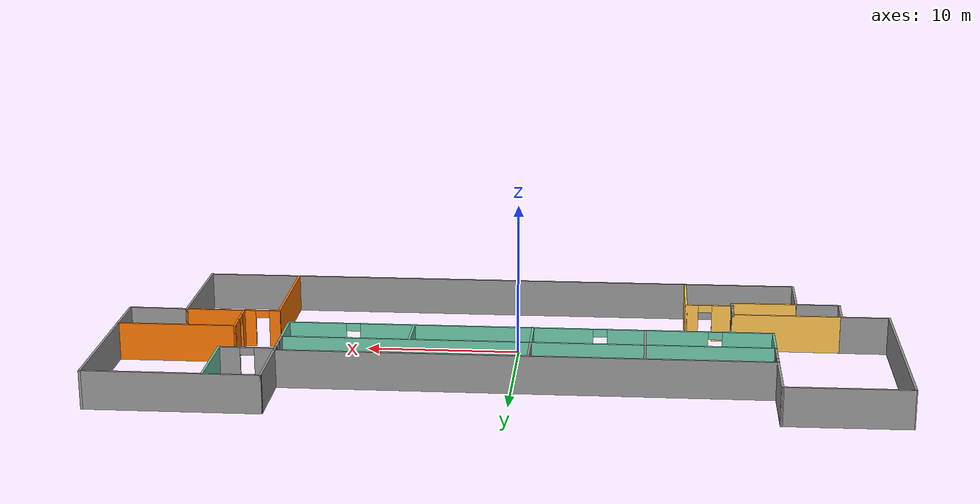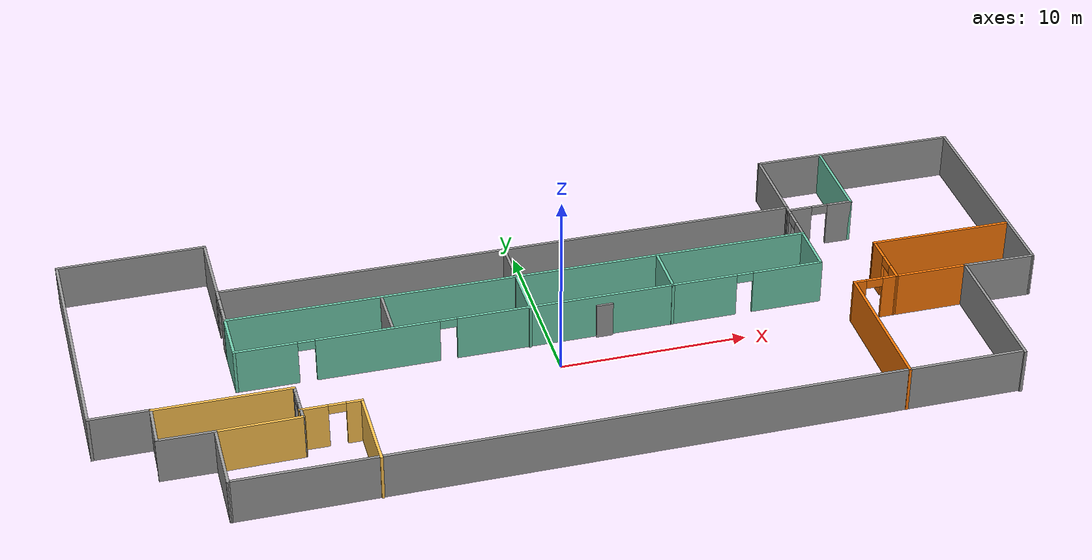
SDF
<?xml version='1.0'?>
<sdf version='1.6'>
  <model name='buildingEditorModel'>
    <pose frame=''>0.7833 2.13347 0 0 -0 0</pose>
    <link name='Door_2'>
      <collision name='Door_2_Collision'>
        <geometry>
          <box>
            <size>0.9 0.17 2</size>
          </box>
        </geometry>
        <pose frame=''>0 0 1 0 -0 0</pose>
      </collision>
      <visual name='Door_2_Visual'>
        <pose frame=''>0 0 1 0 -0 0</pose>
        <geometry>
          <box>
            <size>0.9 0.17 2</size>
          </box>
        </geometry>
        <material>
          <script>
            <uri>file://media/materials/scripts/gazebo.material</uri>
            <name>Gazebo/Grey</name>
          </script>
        </material>
      </visual>
      <pose frame=''>2.1186 -0.056948 0 0 -0 0</pose>
    </link>
    <link name='Wall_12'>
      <collision name='Wall_12_Collision'>
        <geometry>
          <box>
            <size>11.25 0.15 2.5</size>
          </box>
        </geometry>
        <pose frame=''>0 0 1.25 0 -0 0</pose>
      </collision>
      <visual name='Wall_12_Visual'>
        <pose frame=''>0 0 1.25 0 -0 0</pose>
        <geometry>
          <box>
            <size>11.25 0.15 2.5</size>
          </box>
        </geometry>
        <material>
          <script>
            <uri>file://media/materials/scripts/gazebo.material</uri>
            <name>Gazebo/Grey</name>
          </script>
          <ambient>1 1 1 1</ambient>
        </material>
        <meta>
          <layer>0</layer>
        </meta>
      </visual>
      <pose frame=''>19.5996 10.1001 0 0 -0 3.14159</pose>
    </link>
    <link name='Wall_13'>
      <collision name='Wall_13_Collision'>
        <geometry>
          <box>
            <size>4.75 0.15 2.5</size>
          </box>
        </geometry>
        <pose frame=''>0 0 1.25 0 -0 0</pose>
      </collision>
      <visual name='Wall_13_Visual'>
        <pose frame=''>0 0 1.25 0 -0 0</pose>
        <geometry>
          <box>
            <size>4.75 0.15 2.5</size>
          </box>
        </geometry>
        <material>
          <script>
            <uri>file://media/materials/scripts/gazebo.material</uri>
            <name>Gazebo/Grey</name>
          </script>
          <ambient>1 1 1 1</ambient>
        </material>
        <meta>
          <layer>0</layer>
        </meta>
      </visual>
      <pose frame=''>14.0496 7.80012 0 0 -0 -1.5708</pose>
    </link>
    <link name='Wall_14'>
      <collision name='Wall_14_Collision'>
        <geometry>
          <box>
            <size>31.5 0.15 2.5</size>
          </box>
        </geometry>
        <pose frame=''>0 0 1.25 0 -0 0</pose>
      </collision>
      <visual name='Wall_14_Visual'>
        <pose frame=''>0 0 1.25 0 -0 0</pose>
        <geometry>
          <box>
            <size>31.5 0.15 2.5</size>
          </box>
        </geometry>
        <material>
          <script>
            <uri>file://media/materials/scripts/gazebo.material</uri>
            <name>Gazebo/Grey</name>
          </script>
          <ambient>1 1 1 1</ambient>
        </material>
        <meta>
          <layer>0</layer>
        </meta>
      </visual>
      <pose frame=''>-1.62541 5.50012 0 0 -0 3.14159</pose>
    </link>
    <link name='Wall_15'>
      <collision name='Wall_15_Collision'>
        <geometry>
          <box>
            <size>4.5 0.15 2.5</size>
          </box>
        </geometry>
        <pose frame=''>0 0 1.25 0 -0 0</pose>
      </collision>
      <visual name='Wall_15_Visual'>
        <pose frame=''>0 0 1.25 0 -0 0</pose>
        <geometry>
          <box>
            <size>4.5 0.15 2.5</size>
          </box>
        </geometry>
        <material>
          <script>
            <uri>file://media/materials/scripts/gazebo.material</uri>
            <name>Gazebo/Grey</name>
          </script>
          <ambient>1 1 1 1</ambient>
        </material>
        <meta>
          <layer>0</layer>
        </meta>
      </visual>
      <pose frame=''>-17.3004 7.67512 0 0 -0 1.5708</pose>
    </link>
    <link name='Wall_18'>
      <collision name='Wall_18_Collision'>
        <geometry>
          <box>
            <size>8.00016 0.15 2.5</size>
          </box>
        </geometry>
        <pose frame=''>0 0 1.25 0 -0 0</pose>
      </collision>
      <visual name='Wall_18_Visual'>
        <pose frame=''>0 0 1.25 0 -0 0</pose>
        <geometry>
          <box>
            <size>8.00016 0.15 2.5</size>
          </box>
        </geometry>
        <material>
          <script>
            <uri>file://media/materials/scripts/gazebo.material</uri>
            <name>Gazebo/Grey</name>
          </script>
          <ambient>1 1 1 1</ambient>
        </material>
        <meta>
          <layer>0</layer>
        </meta>
      </visual>
      <pose frame=''>-21.2254 9.82512 0 0 -0 0.006369</pose>
    </link>
    <link name='Wall_20'>
      <pose frame=''>-17.3004 4.20012 0 0 -0 -1.5708</pose>
      <visual name='Wall_20_Visual_0'>
        <pose frame=''>-1.00181 0 1.25 0 -0 0</pose>
        <geometry>
          <box>
            <size>0.746388 0.15 2.5</size>
          </box>
        </geometry>
        <material>
          <script>
            <uri>file://media/materials/scripts/gazebo.material</uri>
            <name>Gazebo/Grey</name>
          </script>
          <ambient>1 1 1 1</ambient>
        </material>
        <meta>
          <layer>0</layer>
        </meta>
      </visual>
      <collision name='Wall_20_Collision_0'>
        <geometry>
          <box>
            <size>0.746388 0.15 2.5</size>
          </box>
        </geometry>
        <pose frame=''>-1.00181 0 1.25 0 -0 0</pose>
      </collision>
      <visual name='Wall_20_Visual_1'>
        <pose frame=''>0.823194 0 1.25 0 -0 0</pose>
        <geometry>
          <box>
            <size>1.10361 0.15 2.5</size>
          </box>
        </geometry>
        <material>
          <script>
            <uri>file://media/materials/scripts/gazebo.material</uri>
            <name>Gazebo/Grey</name>
          </script>
          <ambient>1 1 1 1</ambient>
        </material>
        <meta>
          <layer>0</layer>
        </meta>
      </visual>
      <collision name='Wall_20_Collision_1'>
        <geometry>
          <box>
            <size>1.10361 0.15 2.5</size>
          </box>
        </geometry>
        <pose frame=''>0.823194 0 1.25 0 -0 0</pose>
      </collision>
      <visual name='Wall_20_Visual_2'>
        <pose frame=''>-0.178612 0 2.25 0 -0 0</pose>
        <geometry>
          <box>
            <size>0.9 0.15 0.5</size>
          </box>
        </geometry>
        <material>
          <script>
            <uri>file://media/materials/scripts/gazebo.material</uri>
            <name>Gazebo/Grey</name>
          </script>
          <ambient>1 1 1 1</ambient>
        </material>
        <meta>
          <layer>0</layer>
        </meta>
      </visual>
      <collision name='Wall_20_Collision_2'>
        <geometry>
          <box>
            <size>0.9 0.15 0.5</size>
          </box>
        </geometry>
        <pose frame=''>-0.178612 0 2.25 0 -0 0</pose>
      </collision>
    </link>
    <link name='Wall_21'>
      <collision name='Wall_21_Collision'>
        <geometry>
          <box>
            <size>31.5 0.15 2.5</size>
          </box>
        </geometry>
        <pose frame=''>0 0 1.25 0 -0 0</pose>
      </collision>
      <visual name='Wall_21_Visual'>
        <pose frame=''>0 0 1.25 0 -0 0</pose>
        <geometry>
          <box>
            <size>31.5 0.15 2.5</size>
          </box>
        </geometry>
        <material>
          <script>
            <uri>file://media/materials/scripts/gazebo.material</uri>
            <name>Gazebo/Grey</name>
          </script>
          <ambient>0.435294 0.796078 0.67451 1</ambient>
        </material>
        <meta>
          <layer>0</layer>
        </meta>
      </visual>
      <pose frame=''>-1.62541 2.90012 0 0 -0 0</pose>
    </link>
    <link name='Wall_22'>
      <pose frame=''>14.0496 4.20012 0 0 -0 1.5708</pose>
      <visual name='Wall_22_Visual_0'>
        <pose frame=''>-0.810224 0 1.25 0 -0 0</pose>
        <geometry>
          <box>
            <size>1.12955 0.15 2.5</size>
          </box>
        </geometry>
        <material>
          <script>
            <uri>file://media/materials/scripts/gazebo.material</uri>
            <name>Gazebo/Grey</name>
          </script>
          <ambient>1 1 1 1</ambient>
        </material>
        <meta>
          <layer>0</layer>
        </meta>
      </visual>
      <collision name='Wall_22_Collision_0'>
        <geometry>
          <box>
            <size>1.12955 0.15 2.5</size>
          </box>
        </geometry>
        <pose frame=''>-0.810224 0 1.25 0 -0 0</pose>
      </collision>
      <visual name='Wall_22_Visual_1'>
        <pose frame=''>1.01478 0 1.25 0 -0 0</pose>
        <geometry>
          <box>
            <size>0.720448 0.15 2.5</size>
          </box>
        </geometry>
        <material>
          <script>
            <uri>file://media/materials/scripts/gazebo.material</uri>
            <name>Gazebo/Grey</name>
          </script>
          <ambient>1 1 1 1</ambient>
        </material>
        <meta>
          <layer>0</layer>
        </meta>
      </visual>
      <collision name='Wall_22_Collision_1'>
        <geometry>
          <box>
            <size>0.720448 0.15 2.5</size>
          </box>
        </geometry>
        <pose frame=''>1.01478 0 1.25 0 -0 0</pose>
      </collision>
      <visual name='Wall_22_Visual_2'>
        <pose frame=''>0.204552 0 2.25 0 -0 0</pose>
        <geometry>
          <box>
            <size>0.9 0.15 0.5</size>
          </box>
        </geometry>
        <material>
          <script>
            <uri>file://media/materials/scripts/gazebo.material</uri>
            <name>Gazebo/Grey</name>
          </script>
          <ambient>1 1 1 1</ambient>
        </material>
        <meta>
          <layer>0</layer>
        </meta>
      </visual>
      <collision name='Wall_22_Collision_2'>
        <geometry>
          <box>
            <size>0.9 0.15 0.5</size>
          </box>
        </geometry>
        <pose frame=''>0.204552 0 2.25 0 -0 0</pose>
      </collision>
    </link>
    <link name='Wall_24'>
      <collision name='Wall_24_Collision'>
        <geometry>
          <box>
            <size>3 0.15 2.5</size>
          </box>
        </geometry>
        <pose frame=''>0 0 1.25 0 -0 0</pose>
      </collision>
      <visual name='Wall_24_Visual'>
        <pose frame=''>0 0 1.25 0 -0 0</pose>
        <geometry>
          <box>
            <size>3 0.15 2.5</size>
          </box>
        </geometry>
        <material>
          <script>
            <uri>file://media/materials/scripts/gazebo.material</uri>
            <name>Gazebo/Grey</name>
          </script>
          <ambient>0.435294 0.796078 0.67451 1</ambient>
        </material>
        <meta>
          <layer>0</layer>
        </meta>
      </visual>
      <pose frame=''>-17.3004 1.47512 0 0 -0 -1.5708</pose>
    </link>
    <link name='Wall_25'>
      <pose frame=''>-1.62541 0.050122 0 0 -0 0</pose>
      <visual name='Wall_25_Visual_0'>
        <pose frame=''>-14.0877 0 1.25 0 -0 0</pose>
        <geometry>
          <box>
            <size>3.32458 0.15 2.5</size>
          </box>
        </geometry>
        <material>
          <script>
            <uri>file://media/materials/scripts/gazebo.material</uri>
            <name>Gazebo/Grey</name>
          </script>
          <ambient>0.435294 0.796078 0.67451 1</ambient>
        </material>
        <meta>
          <layer>0</layer>
        </meta>
      </visual>
      <collision name='Wall_25_Collision_0'>
        <geometry>
          <box>
            <size>3.32458 0.15 2.5</size>
          </box>
        </geometry>
        <pose frame=''>-14.0877 0 1.25 0 -0 0</pose>
      </collision>
      <visual name='Wall_25_Visual_1'>
        <pose frame=''>-8.27902 0 1.25 0 -0 0</pose>
        <geometry>
          <box>
            <size>6.4928 0.15 2.5</size>
          </box>
        </geometry>
        <material>
          <script>
            <uri>file://media/materials/scripts/gazebo.material</uri>
            <name>Gazebo/Grey</name>
          </script>
          <ambient>0.435294 0.796078 0.67451 1</ambient>
        </material>
        <meta>
          <layer>0</layer>
        </meta>
      </visual>
      <collision name='Wall_25_Collision_1'>
        <geometry>
          <box>
            <size>6.4928 0.15 2.5</size>
          </box>
        </geometry>
        <pose frame=''>-8.27902 0 1.25 0 -0 0</pose>
      </collision>
      <visual name='Wall_25_Visual_2'>
        <pose frame=''>3.43273 0 1.25 0 -0 0</pose>
        <geometry>
          <box>
            <size>15.1307 0.15 2.5</size>
          </box>
        </geometry>
        <material>
          <script>
            <uri>file://media/materials/scripts/gazebo.material</uri>
            <name>Gazebo/Grey</name>
          </script>
          <ambient>0.435294 0.796078 0.67451 1</ambient>
        </material>
        <meta>
          <layer>0</layer>
        </meta>
      </visual>
      <collision name='Wall_25_Collision_2'>
        <geometry>
          <box>
            <size>15.1307 0.15 2.5</size>
          </box>
        </geometry>
        <pose frame=''>3.43273 0 1.25 0 -0 0</pose>
      </collision>
      <visual name='Wall_25_Visual_3'>
        <pose frame=''>13.824 0 1.25 0 -0 0</pose>
        <geometry>
          <box>
            <size>3.85191 0.15 2.5</size>
          </box>
        </geometry>
        <material>
          <script>
            <uri>file://media/materials/scripts/gazebo.material</uri>
            <name>Gazebo/Grey</name>
          </script>
          <ambient>0.435294 0.796078 0.67451 1</ambient>
        </material>
        <meta>
          <layer>0</layer>
        </meta>
      </visual>
      <collision name='Wall_25_Collision_3'>
        <geometry>
          <box>
            <size>3.85191 0.15 2.5</size>
          </box>
        </geometry>
        <pose frame=''>13.824 0 1.25 0 -0 0</pose>
      </collision>
      <visual name='Wall_25_Visual_4'>
        <pose frame=''>-11.9754 0 2.25 0 -0 0</pose>
        <geometry>
          <box>
            <size>0.9 0.15 0.5</size>
          </box>
        </geometry>
        <material>
          <script>
            <uri>file://media/materials/scripts/gazebo.material</uri>
            <name>Gazebo/Grey</name>
          </script>
          <ambient>0.435294 0.796078 0.67451 1</ambient>
        </material>
        <meta>
          <layer>0</layer>
        </meta>
      </visual>
      <collision name='Wall_25_Collision_4'>
        <geometry>
          <box>
            <size>0.9 0.15 0.5</size>
          </box>
        </geometry>
        <pose frame=''>-11.9754 0 2.25 0 -0 0</pose>
      </collision>
      <visual name='Wall_25_Visual_5'>
        <pose frame=''>-4.58262 0 2.25 0 -0 0</pose>
        <geometry>
          <box>
            <size>0.9 0.15 0.5</size>
          </box>
        </geometry>
        <material>
          <script>
            <uri>file://media/materials/scripts/gazebo.material</uri>
            <name>Gazebo/Grey</name>
          </script>
          <ambient>0.435294 0.796078 0.67451 1</ambient>
        </material>
        <meta>
          <layer>0</layer>
        </meta>
      </visual>
      <collision name='Wall_25_Collision_5'>
        <geometry>
          <box>
            <size>0.9 0.15 0.5</size>
          </box>
        </geometry>
        <pose frame=''>-4.58262 0 2.25 0 -0 0</pose>
      </collision>
      <visual name='Wall_25_Visual_6'>
        <pose frame=''>11.4481 0 2.25 0 -0 0</pose>
        <geometry>
          <box>
            <size>0.9 0.15 0.5</size>
          </box>
        </geometry>
        <material>
          <script>
            <uri>file://media/materials/scripts/gazebo.material</uri>
            <name>Gazebo/Grey</name>
          </script>
          <ambient>0.435294 0.796078 0.67451 1</ambient>
        </material>
        <meta>
          <layer>0</layer>
        </meta>
      </visual>
      <collision name='Wall_25_Collision_6'>
        <geometry>
          <box>
            <size>0.9 0.15 0.5</size>
          </box>
        </geometry>
        <pose frame=''>11.4481 0 2.25 0 -0 0</pose>
      </collision>
    </link>
    <link name='Wall_26'>
      <collision name='Wall_26_Collision'>
        <geometry>
          <box>
            <size>3 0.15 2.5</size>
          </box>
        </geometry>
        <pose frame=''>0 0 1.25 0 -0 0</pose>
      </collision>
      <visual name='Wall_26_Visual'>
        <pose frame=''>0 0 1.25 0 -0 0</pose>
        <geometry>
          <box>
            <size>3 0.15 2.5</size>
          </box>
        </geometry>
        <material>
          <script>
            <uri>file://media/materials/scripts/gazebo.material</uri>
            <name>Gazebo/Grey</name>
          </script>
          <ambient>0.435294 0.796078 0.67451 1</ambient>
        </material>
        <meta>
          <layer>0</layer>
        </meta>
      </visual>
      <pose frame=''>14.0496 1.47512 0 0 -0 1.5708</pose>
    </link>
    <link name='Wall_28'>
      <collision name='Wall_28_Collision'>
        <geometry>
          <box>
            <size>2.75 0.15 2.5</size>
          </box>
        </geometry>
        <pose frame=''>0 0 1.25 0 -0 0</pose>
      </collision>
      <visual name='Wall_28_Visual'>
        <pose frame=''>0 0 1.25 0 -0 0</pose>
        <geometry>
          <box>
            <size>2.75 0.15 2.5</size>
          </box>
        </geometry>
        <material>
          <script>
            <uri>file://media/materials/scripts/gazebo.material</uri>
            <name>Gazebo/Grey</name>
          </script>
          <ambient>1 1 1 1</ambient>
        </material>
        <meta>
          <layer>0</layer>
        </meta>
      </visual>
      <pose frame=''>-1.8761 4.11632 0 0 -0 -1.5708</pose>
    </link>
    <link name='Wall_30'>
      <collision name='Wall_30_Collision'>
        <geometry>
          <box>
            <size>3 0.15 2.5</size>
          </box>
        </geometry>
        <pose frame=''>0 0 1.25 0 -0 0</pose>
      </collision>
      <visual name='Wall_30_Visual'>
        <pose frame=''>0 0 1.25 0 -0 0</pose>
        <geometry>
          <box>
            <size>3 0.15 2.5</size>
          </box>
        </geometry>
        <material>
          <script>
            <uri>file://media/materials/scripts/gazebo.material</uri>
            <name>Gazebo/Grey</name>
          </script>
          <ambient>1 1 1 1</ambient>
        </material>
        <meta>
          <layer>0</layer>
        </meta>
      </visual>
      <pose frame=''>-9.11327 1.47517 0 0 -0 -1.5708</pose>
    </link>
    <link name='Wall_34'>
      <collision name='Wall_34_Collision'>
        <geometry>
          <box>
            <size>3 0.15 2.5</size>
          </box>
        </geometry>
        <pose frame=''>0 0 1.25 0 -0 0</pose>
      </collision>
      <visual name='Wall_34_Visual'>
        <pose frame=''>0 0 1.25 0 -0 0</pose>
        <geometry>
          <box>
            <size>3 0.15 2.5</size>
          </box>
        </geometry>
        <material>
          <script>
            <uri>file://media/materials/scripts/gazebo.material</uri>
            <name>Gazebo/Grey</name>
          </script>
          <ambient>0.435294 0.796078 0.67451 1</ambient>
        </material>
        <meta>
          <layer>0</layer>
        </meta>
      </visual>
      <pose frame=''>-1.8761 1.39132 0 0 -0 -1.5708</pose>
    </link>
    <link name='Wall_36'>
      <collision name='Wall_36_Collision'>
        <geometry>
          <box>
            <size>3 0.15 2.5</size>
          </box>
        </geometry>
        <pose frame=''>0 0 1.25 0 -0 0</pose>
      </collision>
      <visual name='Wall_36_Visual'>
        <pose frame=''>0 0 1.25 0 -0 0</pose>
        <geometry>
          <box>
            <size>3 0.15 2.5</size>
          </box>
        </geometry>
        <material>
          <script>
            <uri>file://media/materials/scripts/gazebo.material</uri>
            <name>Gazebo/Grey</name>
          </script>
          <ambient>0.435294 0.796078 0.67451 1</ambient>
        </material>
        <meta>
          <layer>0</layer>
        </meta>
      </visual>
      <pose frame=''>5.85391 1.44923 0 0 -0 -1.5708</pose>
    </link>
    <link name='Wall_38'>
      <collision name='Wall_38_Collision'>
        <geometry>
          <box>
            <size>12.5 0.15 2.5</size>
          </box>
        </geometry>
        <pose frame=''>0 0 1.25 0 -0 0</pose>
      </collision>
      <visual name='Wall_38_Visual'>
        <pose frame=''>0 0 1.25 0 -0 0</pose>
        <geometry>
          <box>
            <size>12.5 0.15 2.5</size>
          </box>
        </geometry>
        <material>
          <script>
            <uri>file://media/materials/scripts/gazebo.material</uri>
            <name>Gazebo/Grey</name>
          </script>
          <ambient>1 1 1 1</ambient>
        </material>
        <meta>
          <layer>0</layer>
        </meta>
      </visual>
      <pose frame=''>25.1496 3.92512 0 0 -0 -1.5708</pose>
    </link>
    <link name='Wall_39'>
      <collision name='Wall_39_Collision'>
        <geometry>
          <box>
            <size>3.97441 0.15 2.5</size>
          </box>
        </geometry>
        <pose frame=''>0 0 1.25 0 -0 0</pose>
      </collision>
      <visual name='Wall_39_Visual'>
        <pose frame=''>0 0 1.25 0 -0 0</pose>
        <geometry>
          <box>
            <size>3.97441 0.15 2.5</size>
          </box>
        </geometry>
        <material>
          <script>
            <uri>file://media/materials/scripts/gazebo.material</uri>
            <name>Gazebo/Grey</name>
          </script>
          <ambient>1 1 1 1</ambient>
        </material>
        <meta>
          <layer>0</layer>
        </meta>
      </visual>
      <pose frame=''>23.2376 -2.21097 0 0 -0 3.12125</pose>
    </link>
    <link name='Wall_40'>
      <collision name='Wall_40_Collision'>
        <geometry>
          <box>
            <size>8.07786 0.15 2.5</size>
          </box>
        </geometry>
        <pose frame=''>0 0 1.25 0 -0 0</pose>
      </collision>
      <visual name='Wall_40_Visual'>
        <pose frame=''>0 0 1.25 0 -0 0</pose>
        <geometry>
          <box>
            <size>8.07786 0.15 2.5</size>
          </box>
        </geometry>
        <material>
          <script>
            <uri>file://media/materials/scripts/gazebo.material</uri>
            <name>Gazebo/Grey</name>
          </script>
          <ambient>1 1 1 1</ambient>
        </material>
        <meta>
          <layer>0</layer>
        </meta>
      </visual>
      <pose frame=''>21.3126 -6.13597 0 0 -0 -1.57407</pose>
    </link>
    <link name='Wall_42'>
      <collision name='Wall_42_Collision'>
        <geometry>
          <box>
            <size>40.5 0.15 2.5</size>
          </box>
        </geometry>
        <pose frame=''>0 0 1.25 0 -0 0</pose>
      </collision>
      <visual name='Wall_42_Visual'>
        <pose frame=''>0 0 1.25 0 -0 0</pose>
        <geometry>
          <box>
            <size>40.5 0.15 2.5</size>
          </box>
        </geometry>
        <material>
          <script>
            <uri>file://media/materials/scripts/gazebo.material</uri>
            <name>Gazebo/Grey</name>
          </script>
          <ambient>1 1 1 1</ambient>
        </material>
        <meta>
          <layer>0</layer>
        </meta>
      </visual>
      <pose frame=''>0.974593 -9.99988 0 0 -0 0</pose>
    </link>
    <link name='Wall_45'>
      <collision name='Wall_45_Collision'>
        <geometry>
          <box>
            <size>7.25 0.15 2.5</size>
          </box>
        </geometry>
        <pose frame=''>0 0 1.25 0 -0 0</pose>
      </collision>
      <visual name='Wall_45_Visual'>
        <pose frame=''>0 0 1.25 0 -0 0</pose>
        <geometry>
          <box>
            <size>7.25 0.15 2.5</size>
          </box>
        </geometry>
        <material>
          <script>
            <uri>file://media/materials/scripts/gazebo.material</uri>
            <name>Gazebo/Grey</name>
          </script>
          <ambient>1 0.764706 0.305882 1</ambient>
        </material>
        <meta>
          <layer>0</layer>
        </meta>
      </visual>
      <pose frame=''>-18.4226 -3.61565 0 0 -0 0</pose>
    </link>
    <link name='Wall_46'>
      <pose frame=''>-14.8726 -4.81659 0 0 -0 -1.5708</pose>
      <visual name='Wall_46_Visual_0'>
        <pose frame=''>-1.06386 0 1.25 0 -0 0</pose>
        <geometry>
          <box>
            <size>0.424155 0.15 2.5</size>
          </box>
        </geometry>
        <material>
          <script>
            <uri>file://media/materials/scripts/gazebo.material</uri>
            <name>Gazebo/Grey</name>
          </script>
          <ambient>1 1 1 1</ambient>
        </material>
        <meta>
          <layer>0</layer>
        </meta>
      </visual>
      <collision name='Wall_46_Collision_0'>
        <geometry>
          <box>
            <size>0.424155 0.15 2.5</size>
          </box>
        </geometry>
        <pose frame=''>-1.06386 0 1.25 0 -0 0</pose>
      </collision>
      <visual name='Wall_46_Visual_1'>
        <pose frame=''>0.662078 0 1.25 0 -0 0</pose>
        <geometry>
          <box>
            <size>1.22772 0.15 2.5</size>
          </box>
        </geometry>
        <material>
          <script>
            <uri>file://media/materials/scripts/gazebo.material</uri>
            <name>Gazebo/Grey</name>
          </script>
          <ambient>1 1 1 1</ambient>
        </material>
        <meta>
          <layer>0</layer>
        </meta>
      </visual>
      <collision name='Wall_46_Collision_1'>
        <geometry>
          <box>
            <size>1.22772 0.15 2.5</size>
          </box>
        </geometry>
        <pose frame=''>0.662078 0 1.25 0 -0 0</pose>
      </collision>
      <visual name='Wall_46_Visual_2'>
        <pose frame=''>-0.401784 0 2.25 0 -0 0</pose>
        <geometry>
          <box>
            <size>0.9 0.15 0.5</size>
          </box>
        </geometry>
        <material>
          <script>
            <uri>file://media/materials/scripts/gazebo.material</uri>
            <name>Gazebo/Grey</name>
          </script>
          <ambient>1 1 1 1</ambient>
        </material>
        <meta>
          <layer>0</layer>
        </meta>
      </visual>
      <collision name='Wall_46_Collision_2'>
        <geometry>
          <box>
            <size>0.9 0.15 0.5</size>
          </box>
        </geometry>
        <pose frame=''>-0.401784 0 2.25 0 -0 0</pose>
      </collision>
    </link>
    <link name='Wall_47'>
      <collision name='Wall_47_Collision'>
        <geometry>
          <box>
            <size>4.45217 0.15 2.5</size>
          </box>
        </geometry>
        <pose frame=''>0 0 1.25 0 -0 0</pose>
      </collision>
      <visual name='Wall_47_Visual'>
        <pose frame=''>0 0 1.25 0 -0 0</pose>
        <geometry>
          <box>
            <size>4.45217 0.15 2.5</size>
          </box>
        </geometry>
        <material>
          <script>
            <uri>file://media/materials/scripts/gazebo.material</uri>
            <name>Gazebo/Grey</name>
          </script>
          <ambient>1 0.764706 0.305882 1</ambient>
        </material>
        <meta>
          <layer>0</layer>
        </meta>
      </visual>
      <pose frame=''>-16.9976 -6.04235 0 0 -0 -3.13006</pose>
    </link>
    <link name='Wall_5'>
      <collision name='Wall_5_Collision'>
        <geometry>
          <box>
            <size>13.566 0.15 2.5</size>
          </box>
        </geometry>
        <pose frame=''>0 0 1.25 0 -0 0</pose>
      </collision>
      <visual name='Wall_5_Visual'>
        <pose frame=''>0 0 1.25 0 -0 0</pose>
        <geometry>
          <box>
            <size>13.566 0.15 2.5</size>
          </box>
        </geometry>
        <material>
          <script>
            <uri>file://media/materials/scripts/gazebo.material</uri>
            <name>Gazebo/Grey</name>
          </script>
          <ambient>1 1 1 1</ambient>
        </material>
        <meta>
          <layer>0</layer>
        </meta>
      </visual>
      <pose frame=''>-25.1115 3.09223 0 0 -0 -1.565</pose>
    </link>
    <link name='Wall_51'>
      <pose frame=''>-13.3738 -5.4524 0 0 -0 0</pose>
      <visual name='Wall_51_Visual_0'>
        <pose frame=''>-0.891642 0 1.25 0 -0 0</pose>
        <geometry>
          <box>
            <size>1.46672 0.15 2.5</size>
          </box>
        </geometry>
        <material>
          <script>
            <uri>file://media/materials/scripts/gazebo.material</uri>
            <name>Gazebo/Grey</name>
          </script>
          <ambient>1 0.764706 0.305882 1</ambient>
        </material>
        <meta>
          <layer>0</layer>
        </meta>
      </visual>
      <collision name='Wall_51_Collision_0'>
        <geometry>
          <box>
            <size>1.46672 0.15 2.5</size>
          </box>
        </geometry>
        <pose frame=''>-0.891642 0 1.25 0 -0 0</pose>
      </collision>
      <visual name='Wall_51_Visual_1'>
        <pose frame=''>1.18336 0 1.25 0 -0 0</pose>
        <geometry>
          <box>
            <size>0.883284 0.15 2.5</size>
          </box>
        </geometry>
        <material>
          <script>
            <uri>file://media/materials/scripts/gazebo.material</uri>
            <name>Gazebo/Grey</name>
          </script>
          <ambient>1 0.764706 0.305882 1</ambient>
        </material>
        <meta>
          <layer>0</layer>
        </meta>
      </visual>
      <collision name='Wall_51_Collision_1'>
        <geometry>
          <box>
            <size>0.883284 0.15 2.5</size>
          </box>
        </geometry>
        <pose frame=''>1.18336 0 1.25 0 -0 0</pose>
      </collision>
      <visual name='Wall_51_Visual_2'>
        <pose frame=''>0.291716 0 2.25 0 -0 0</pose>
        <geometry>
          <box>
            <size>0.9 0.15 0.5</size>
          </box>
        </geometry>
        <material>
          <script>
            <uri>file://media/materials/scripts/gazebo.material</uri>
            <name>Gazebo/Grey</name>
          </script>
          <ambient>1 0.764706 0.305882 1</ambient>
        </material>
        <meta>
          <layer>0</layer>
        </meta>
      </visual>
      <collision name='Wall_51_Collision_2'>
        <geometry>
          <box>
            <size>0.9 0.15 0.5</size>
          </box>
        </geometry>
        <pose frame=''>0.291716 0 2.25 0 -0 0</pose>
      </collision>
    </link>
    <link name='Wall_52'>
      <collision name='Wall_52_Collision'>
        <geometry>
          <box>
            <size>4.75 0.15 2.5</size>
          </box>
        </geometry>
        <pose frame=''>0 0 1.25 0 -0 0</pose>
      </collision>
      <visual name='Wall_52_Visual'>
        <pose frame=''>0 0 1.25 0 -0 0</pose>
        <geometry>
          <box>
            <size>4.75 0.15 2.5</size>
          </box>
        </geometry>
        <material>
          <script>
            <uri>file://media/materials/scripts/gazebo.material</uri>
            <name>Gazebo/Grey</name>
          </script>
          <ambient>1 0.764706 0.305882 1</ambient>
        </material>
        <meta>
          <layer>0</layer>
        </meta>
      </visual>
      <pose frame=''>-11.8238 -7.7524 0 0 -0 -1.5708</pose>
    </link>
    <link name='Wall_54'>
      <collision name='Wall_54_Collision'>
        <geometry>
          <box>
            <size>7.75 0.15 2.5</size>
          </box>
        </geometry>
        <pose frame=''>0 0 1.25 0 -0 0</pose>
      </collision>
      <visual name='Wall_54_Visual'>
        <pose frame=''>0 0 1.25 0 -0 0</pose>
        <geometry>
          <box>
            <size>7.75 0.15 2.5</size>
          </box>
        </geometry>
        <material>
          <script>
            <uri>file://media/materials/scripts/gazebo.material</uri>
            <name>Gazebo/Grey</name>
          </script>
          <ambient>0.996078 0.47451 0.0196078 1</ambient>
        </material>
        <meta>
          <layer>0</layer>
        </meta>
      </visual>
      <pose frame=''>21.2493 1.03252 0 0 -0 3.14159</pose>
    </link>
    <link name='Wall_58'>
      <collision name='Wall_58_Collision'>
        <geometry>
          <box>
            <size>4 0.15 2.5</size>
          </box>
        </geometry>
        <pose frame=''>0 0 1.25 0 -0 0</pose>
      </collision>
      <visual name='Wall_58_Visual'>
        <pose frame=''>0 0 1.25 0 -0 0</pose>
        <geometry>
          <box>
            <size>4 0.15 2.5</size>
          </box>
        </geometry>
        <material>
          <script>
            <uri>file://media/materials/scripts/gazebo.material</uri>
            <name>Gazebo/Grey</name>
          </script>
          <ambient>0.996078 0.47451 0.0196078 1</ambient>
        </material>
        <meta>
          <layer>0</layer>
        </meta>
      </visual>
      <pose frame=''>19.4005 -2.17206 0 0 -0 3.14159</pose>
    </link>
    <link name='Wall_59'>
      <pose frame=''>17.4624 -0.569771 0 0 -0 1.57899</pose>
      <visual name='Wall_59_Visual_0'>
        <pose frame=''>-1.17025 0 1.25 0 -0 0</pose>
        <geometry>
          <box>
            <size>1.01419 0.15 2.5</size>
          </box>
        </geometry>
        <material>
          <script>
            <uri>file://media/materials/scripts/gazebo.material</uri>
            <name>Gazebo/Grey</name>
          </script>
          <ambient>0.996078 0.47451 0.0196078 1</ambient>
        </material>
        <meta>
          <layer>0</layer>
        </meta>
      </visual>
      <collision name='Wall_59_Collision_0'>
        <geometry>
          <box>
            <size>1.01419 0.15 2.5</size>
          </box>
        </geometry>
        <pose frame=''>-1.17025 0 1.25 0 -0 0</pose>
      </collision>
      <visual name='Wall_59_Visual_1'>
        <pose frame=''>0.957093 0 1.25 0 -0 0</pose>
        <geometry>
          <box>
            <size>1.4405 0.15 2.5</size>
          </box>
        </geometry>
        <material>
          <script>
            <uri>file://media/materials/scripts/gazebo.material</uri>
            <name>Gazebo/Grey</name>
          </script>
          <ambient>0.996078 0.47451 0.0196078 1</ambient>
        </material>
        <meta>
          <layer>0</layer>
        </meta>
      </visual>
      <collision name='Wall_59_Collision_1'>
        <geometry>
          <box>
            <size>1.4405 0.15 2.5</size>
          </box>
        </geometry>
        <pose frame=''>0.957093 0 1.25 0 -0 0</pose>
      </collision>
      <visual name='Wall_59_Visual_2'>
        <pose frame=''>-0.213157 0 2.25 0 -0 0</pose>
        <geometry>
          <box>
            <size>0.9 0.15 0.5</size>
          </box>
        </geometry>
        <material>
          <script>
            <uri>file://media/materials/scripts/gazebo.material</uri>
            <name>Gazebo/Grey</name>
          </script>
          <ambient>0.996078 0.47451 0.0196078 1</ambient>
        </material>
        <meta>
          <layer>0</layer>
        </meta>
      </visual>
      <collision name='Wall_59_Collision_2'>
        <geometry>
          <box>
            <size>0.9 0.15 0.5</size>
          </box>
        </geometry>
        <pose frame=''>-0.213157 0 2.25 0 -0 0</pose>
      </collision>
    </link>
    <link name='Wall_6'>
      <collision name='Wall_6_Collision'>
        <geometry>
          <box>
            <size>3.25 0.15 2.5</size>
          </box>
        </geometry>
        <pose frame=''>0 0 1.25 0 -0 0</pose>
      </collision>
      <visual name='Wall_6_Visual'>
        <pose frame=''>0 0 1.25 0 -0 0</pose>
        <geometry>
          <box>
            <size>3.25 0.15 2.5</size>
          </box>
        </geometry>
        <material>
          <script>
            <uri>file://media/materials/scripts/gazebo.material</uri>
            <name>Gazebo/Grey</name>
          </script>
          <ambient>1 1 1 1</ambient>
        </material>
        <meta>
          <layer>0</layer>
        </meta>
      </visual>
      <pose frame=''>-23.5226 -3.58971 0 0 -0 0</pose>
    </link>
    <link name='Wall_62'>
      <pose frame=''>16.3005 -2.17206 0 0 -0 3.14159</pose>
      <visual name='Wall_62_Visual_0'>
        <pose frame=''>-0.814621 0 1.25 0 -0 0</pose>
        <geometry>
          <box>
            <size>0.870759 0.15 2.5</size>
          </box>
        </geometry>
        <material>
          <script>
            <uri>file://media/materials/scripts/gazebo.material</uri>
            <name>Gazebo/Grey</name>
          </script>
          <ambient>0.996078 0.47451 0.0196078 1</ambient>
        </material>
        <meta>
          <layer>0</layer>
        </meta>
      </visual>
      <collision name='Wall_62_Collision_0'>
        <geometry>
          <box>
            <size>0.870759 0.15 2.5</size>
          </box>
        </geometry>
        <pose frame=''>-0.814621 0 1.25 0 -0 0</pose>
      </collision>
      <visual name='Wall_62_Visual_1'>
        <pose frame=''>0.885379 0 1.25 0 -0 0</pose>
        <geometry>
          <box>
            <size>0.729241 0.15 2.5</size>
          </box>
        </geometry>
        <material>
          <script>
            <uri>file://media/materials/scripts/gazebo.material</uri>
            <name>Gazebo/Grey</name>
          </script>
          <ambient>0.996078 0.47451 0.0196078 1</ambient>
        </material>
        <meta>
          <layer>0</layer>
        </meta>
      </visual>
      <collision name='Wall_62_Collision_1'>
        <geometry>
          <box>
            <size>0.729241 0.15 2.5</size>
          </box>
        </geometry>
        <pose frame=''>0.885379 0 1.25 0 -0 0</pose>
      </collision>
      <visual name='Wall_62_Visual_2'>
        <pose frame=''>0.070759 0 2.25 0 -0 0</pose>
        <geometry>
          <box>
            <size>0.9 0.15 0.5</size>
          </box>
        </geometry>
        <material>
          <script>
            <uri>file://media/materials/scripts/gazebo.material</uri>
            <name>Gazebo/Grey</name>
          </script>
          <ambient>0.996078 0.47451 0.0196078 1</ambient>
        </material>
        <meta>
          <layer>0</layer>
        </meta>
      </visual>
      <collision name='Wall_62_Collision_2'>
        <geometry>
          <box>
            <size>0.9 0.15 0.5</size>
          </box>
        </geometry>
        <pose frame=''>0.070759 0 2.25 0 -0 0</pose>
      </collision>
    </link>
    <link name='Wall_63'>
      <collision name='Wall_63_Collision'>
        <geometry>
          <box>
            <size>8 0.15 2.5</size>
          </box>
        </geometry>
        <pose frame=''>0 0 1.25 0 -0 0</pose>
      </collision>
      <visual name='Wall_63_Visual'>
        <pose frame=''>0 0 1.25 0 -0 0</pose>
        <geometry>
          <box>
            <size>8 0.15 2.5</size>
          </box>
        </geometry>
        <material>
          <script>
            <uri>file://media/materials/scripts/gazebo.material</uri>
            <name>Gazebo/Grey</name>
          </script>
          <ambient>0.996078 0.47451 0.0196078 1</ambient>
        </material>
        <meta>
          <layer>0</layer>
        </meta>
      </visual>
      <pose frame=''>15.1255 -6.09706 0 0 -0 -1.5708</pose>
    </link>
    <link name='Wall_65'>
      <pose frame=''>15.8249 5.18286 0 0 -0 0</pose>
      <visual name='Wall_65_Visual_0'>
        <pose frame=''>-1.16758 0 1.25 0 -0 0</pose>
        <geometry>
          <box>
            <size>1.41484 0.15 2.5</size>
          </box>
        </geometry>
        <material>
          <script>
            <uri>file://media/materials/scripts/gazebo.material</uri>
            <name>Gazebo/Grey</name>
          </script>
          <ambient>1 1 1 1</ambient>
        </material>
        <meta>
          <layer>0</layer>
        </meta>
      </visual>
      <collision name='Wall_65_Collision_0'>
        <geometry>
          <box>
            <size>1.41484 0.15 2.5</size>
          </box>
        </geometry>
        <pose frame=''>-1.16758 0 1.25 0 -0 0</pose>
      </collision>
      <visual name='Wall_65_Visual_1'>
        <pose frame=''>1.15742 0 1.25 0 -0 0</pose>
        <geometry>
          <box>
            <size>1.43516 0.15 2.5</size>
          </box>
        </geometry>
        <material>
          <script>
            <uri>file://media/materials/scripts/gazebo.material</uri>
            <name>Gazebo/Grey</name>
          </script>
          <ambient>1 1 1 1</ambient>
        </material>
        <meta>
          <layer>0</layer>
        </meta>
      </visual>
      <collision name='Wall_65_Collision_1'>
        <geometry>
          <box>
            <size>1.43516 0.15 2.5</size>
          </box>
        </geometry>
        <pose frame=''>1.15742 0 1.25 0 -0 0</pose>
      </collision>
      <visual name='Wall_65_Visual_2'>
        <pose frame=''>-0.010162 0 2.25 0 -0 0</pose>
        <geometry>
          <box>
            <size>0.9 0.15 0.5</size>
          </box>
        </geometry>
        <material>
          <script>
            <uri>file://media/materials/scripts/gazebo.material</uri>
            <name>Gazebo/Grey</name>
          </script>
          <ambient>1 1 1 1</ambient>
        </material>
        <meta>
          <layer>0</layer>
        </meta>
      </visual>
      <collision name='Wall_65_Collision_2'>
        <geometry>
          <box>
            <size>0.9 0.15 0.5</size>
          </box>
        </geometry>
        <pose frame=''>-0.010162 0 2.25 0 -0 0</pose>
      </collision>
    </link>
    <link name='Wall_66'>
      <collision name='Wall_66_Collision'>
        <geometry>
          <box>
            <size>5 0.15 2.5</size>
          </box>
        </geometry>
        <pose frame=''>0 0 1.25 0 -0 0</pose>
      </collision>
      <visual name='Wall_66_Visual'>
        <pose frame=''>0 0 1.25 0 -0 0</pose>
        <geometry>
          <box>
            <size>5 0.15 2.5</size>
          </box>
        </geometry>
        <material>
          <script>
            <uri>file://media/materials/scripts/gazebo.material</uri>
            <name>Gazebo/Grey</name>
          </script>
          <ambient>0.435294 0.796078 0.67451 1</ambient>
        </material>
        <meta>
          <layer>0</layer>
        </meta>
      </visual>
      <pose frame=''>17.6249 7.60786 0 0 -0 1.5708</pose>
    </link>
    <link name='Wall_7'>
      <collision name='Wall_7_Collision'>
        <geometry>
          <box>
            <size>2.55019 0.15 2.5</size>
          </box>
        </geometry>
        <pose frame=''>0 0 1.25 0 -0 0</pose>
      </collision>
      <visual name='Wall_7_Visual'>
        <pose frame=''>0 0 1.25 0 -0 0</pose>
        <geometry>
          <box>
            <size>2.55019 0.15 2.5</size>
          </box>
        </geometry>
        <material>
          <script>
            <uri>file://media/materials/scripts/gazebo.material</uri>
            <name>Gazebo/Grey</name>
          </script>
          <ambient>1 1 1 1</ambient>
        </material>
        <meta>
          <layer>0</layer>
        </meta>
      </visual>
      <pose frame=''>-21.9985 -4.81547 0 0 -0 -1.59241</pose>
    </link>
    <link name='Wall_8'>
      <collision name='Wall_8_Collision'>
        <geometry>
          <box>
            <size>3.02606 0.15 2.5</size>
          </box>
        </geometry>
        <pose frame=''>0 0 1.25 0 -0 0</pose>
      </collision>
      <visual name='Wall_8_Visual'>
        <pose frame=''>0 0 1.25 0 -0 0</pose>
        <geometry>
          <box>
            <size>3.02606 0.15 2.5</size>
          </box>
        </geometry>
        <material>
          <script>
            <uri>file://media/materials/scripts/gazebo.material</uri>
            <name>Gazebo/Grey</name>
          </script>
          <ambient>1 1 1 1</ambient>
        </material>
        <meta>
          <layer>0</layer>
        </meta>
      </visual>
      <pose frame=''>-20.6124 -6.05419 0 0 -0 -0.009019</pose>
    </link>
    <link name='Wall_9'>
      <collision name='Wall_9_Collision'>
        <geometry>
          <box>
            <size>4.0828 0.15 2.5</size>
          </box>
        </geometry>
        <pose frame=''>0 0 1.25 0 -0 0</pose>
      </collision>
      <visual name='Wall_9_Visual'>
        <pose frame=''>0 0 1.25 0 -0 0</pose>
        <geometry>
          <box>
            <size>4.0828 0.15 2.5</size>
          </box>
        </geometry>
        <material>
          <script>
            <uri>file://media/materials/scripts/gazebo.material</uri>
            <name>Gazebo/Grey</name>
          </script>
          <ambient>1 1 1 1</ambient>
        </material>
        <meta>
          <layer>0</layer>
        </meta>
      </visual>
      <pose frame=''>-19.1874 -8.03352 0 0 -0 -1.57739</pose>
    </link>
    <static>1</static>
  </model>
</sdf>
